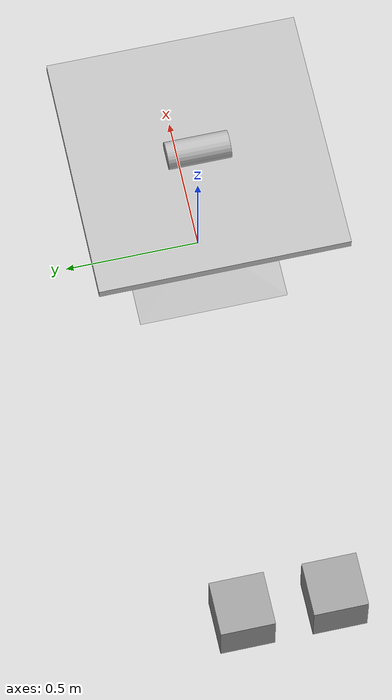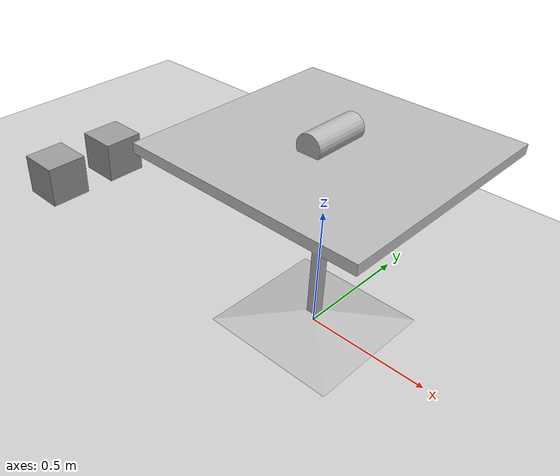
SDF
<sdf version='1.7'>
  <world name='default'>
    <light name='sun' type='directional'>
      <cast_shadows>1</cast_shadows>
      <pose>0 0 10 0 -0 0</pose>
      <diffuse>0.8 0.8 0.8 1</diffuse>
      <specular>0.2 0.2 0.2 1</specular>
      <attenuation>
        <range>1000</range>
        <constant>0.9</constant>
        <linear>0.01</linear>
        <quadratic>0.001</quadratic>
      </attenuation>
      <direction>-0.5 0.1 -0.9</direction>
      <spot>
        <inner_angle>0</inner_angle>
        <outer_angle>0</outer_angle>
        <falloff>0</falloff>
      </spot>
    </light>
    <model name='ground_plane'>
      <static>1</static>
      <link name='link'>
        <collision name='collision'>
          <geometry>
            <plane>
              <normal>0 0 1</normal>
              <size>100 100</size>
            </plane>
          </geometry>
          <surface>
            <contact>
              <collide_bitmask>65535</collide_bitmask>
              <ode/>
            </contact>
            <friction>
              <ode>
                <mu>100</mu>
                <mu2>50</mu2>
              </ode>
              <torsional>
                <ode/>
              </torsional>
            </friction>
            <bounce/>
          </surface>
          <max_contacts>10</max_contacts>
        </collision>
        <visual name='visual'>
          <cast_shadows>0</cast_shadows>
          <geometry>
            <plane>
              <normal>0 0 1</normal>
              <size>100 100</size>
            </plane>
          </geometry>
          <material>
            <script>
              <uri>file://media/materials/scripts/gazebo.material</uri>
              <name>Gazebo/Grey</name>
            </script>
          </material>
        </visual>
        <self_collide>0</self_collide>
        <enable_wind>0</enable_wind>
        <kinematic>0</kinematic>
      </link>
    </model>
    <gravity>0 0 -9.8</gravity>
    <magnetic_field>6e-06 2.3e-05 -4.2e-05</magnetic_field>
    <atmosphere type='adiabatic'/>
    <physics type='ode'>
      <max_step_size>0.001</max_step_size>
      <real_time_factor>1</real_time_factor>
      <real_time_update_rate>1000</real_time_update_rate>
    </physics>
    <scene>
      <ambient>0.4 0.4 0.4 1</ambient>
      <background>0.7 0.7 0.7 1</background>
      <shadows>1</shadows>
    </scene>
    <wind/>
    <spherical_coordinates>
      <surface_model>EARTH_WGS84</surface_model>
      <latitude_deg>0</latitude_deg>
      <longitude_deg>0</longitude_deg>
      <elevation>0</elevation>
      <heading_deg>0</heading_deg>
    </spherical_coordinates>
    <gui fullscreen='0'>
      <camera name='user_camera'>
        <pose>-6.6627 -5.3902 5.57121 0 0.544 0.647997</pose>
        <view_controller>orbit</view_controller>
        <projection_type>perspective</projection_type>
      </camera>
    </gui>
    <model name='beer'>
      <link name='link'>
        <pose>0 0 0 0 0 0</pose>
        <inertial>
          <mass>0.1</mass>
          <inertia>
            <ixx>0.00058</ixx>
            <ixy>0</ixy>
            <ixz>0</ixz>
            <iyy>0.00058</iyy>
            <iyz>0</iyz>
            <izz>0.00019</izz>
          </inertia>
          <pose>0 0 0 0 -0 0</pose>
        </inertial>
        <collision name='collision'>
          <geometry>
            <cylinder>
              <radius>0.05</radius>
              <length>0.23</length>
            </cylinder>
          </geometry>
          <max_contacts>10</max_contacts>
          <surface>
            <contact>
              <ode/>
            </contact>
            <bounce/>
            <friction>
              <torsional>
                <ode/>
              </torsional>
              <ode>
                <mu>100.0</mu>
                <mu2>100.0</mu2>
              </ode>
            </friction>
          </surface>
        </collision>
        <visual name='visual'>
          <geometry>
            <cylinder>
              <radius>0.05</radius>
              <length>0.23</length>
            </cylinder>
          </geometry>
          <surface>
            <friction>
                <ode>
                <mu>100.0</mu>
                <mu2>100.0</mu2>
                </ode>
            </friction>
          </surface>
          <material>
            <script>
              <uri>model://beer/materials/scripts</uri>
              <uri>model://beer/materials/textures</uri>
              <name>Beer/Diffuse</name>
            </script>
          </material>
        </visual>
        <self_collide>0</self_collide>
        <enable_wind>0</enable_wind>
        <kinematic>0</kinematic>
      </link>
      <pose>0 0 0.8 -1.57 0 0</pose>
    </model>
    <model name='cafe_table'>
      <static>1</static>
      <link name='link'>
        <collision name='surface'>
          <pose>0 0 0.755 0 -0 0</pose>
          <geometry>
            <box>
              <size>0.913 0.913 0.04</size>
            </box>
          </geometry>
          <max_contacts>10</max_contacts>
          <surface>
            <contact>
              <ode/>
            </contact>
            <bounce/>
            <friction>
              <torsional>
                <ode/>
              </torsional>
              <ode/>
            </friction>
          </surface>
        </collision>
        <collision name='column'>
          <pose>0 0 0.37 0 -0 0</pose>
          <geometry>
            <box>
              <size>0.042 0.042 0.74</size>
            </box>
          </geometry>
          <max_contacts>10</max_contacts>
          <surface>
            <contact>
              <ode/>
            </contact>
            <bounce/>
            <friction>
              <torsional>
                <ode/>
              </torsional>
              <ode/>
            </friction>
          </surface>
        </collision>
        <collision name='base'>
          <pose>0 0 0.02 0 -0 0</pose>
          <geometry>
            <box>
              <size>0.56 0.56 0.04</size>
            </box>
          </geometry>
          <max_contacts>10</max_contacts>
          <surface>
            <contact>
              <ode/>
            </contact>
            <bounce/>
            <friction>
              <torsional>
                <ode/>
              </torsional>
              <ode/>
            </friction>
          </surface>
        </collision>
        <visual name='visual'>
          <geometry>
            <mesh>
              <uri>model://cafe_table/meshes/cafe_table.dae</uri>
            </mesh>
          </geometry>
        </visual>
        <self_collide>0</self_collide>
        <enable_wind>0</enable_wind>
        <kinematic>0</kinematic>
      </link>
      <pose>0.0 0.0 0 0 0 0</pose>
    </model>
    <model name='unit_box_1'>
      <static>1</static>
      <pose>-1.5 0.17 0.1 0 -0 0</pose>
      <link name='link'>
        <inertial>
          <mass>1</mass>
          <inertia>
            <ixx>0.166667</ixx>
            <ixy>0</ixy>
            <ixz>0</ixz>
            <iyy>0.166667</iyy>
            <iyz>0</iyz>
            <izz>0.166667</izz>
          </inertia>
          <pose>0 0 0 0 -0 0</pose>
        </inertial>
        <collision name='collision'>
          <geometry>
            <box>
              <size>0.2 0.2 0.2</size>
            </box>
          </geometry>
          <max_contacts>10</max_contacts>
          <surface>
            <contact>
              <ode/>
            </contact>
            <bounce/>
            <friction>
              <torsional>
                <ode/>
              </torsional>
              <ode/>
            </friction>
          </surface>
        </collision>
        <visual name='visual'>
          <geometry>
            <box>
              <size>0.2 0.2 0.2</size>
            </box>
          </geometry>
          <material>
            <script>
              <name>Gazebo/Grey</name>
              <uri>file://media/materials/scripts/gazebo.material</uri>
            </script>
          </material>
        </visual>
        <self_collide>0</self_collide>
        <enable_wind>0</enable_wind>
        <kinematic>0</kinematic>
      </link>
    </model>
    <model name='unit_box_2'>
      <static>1</static>
      <pose>-1.5 -0.17 0.1 0 -0 0</pose>
      <link name='link'>
        <inertial>
          <mass>1</mass>
          <inertia>
            <ixx>0.166667</ixx>
            <ixy>0</ixy>
            <ixz>0</ixz>
            <iyy>0.166667</iyy>
            <iyz>0</iyz>
            <izz>0.166667</izz>
          </inertia>
          <pose>0 0 0 0 -0 0</pose>
        </inertial>
        <collision name='collision'>
          <geometry>
            <box>
              <size>0.2 0.2 0.2</size>
            </box>
          </geometry>
          <max_contacts>10</max_contacts>
          <surface>
            <contact>
              <ode/>
            </contact>
            <bounce/>
            <friction>
              <torsional>
                <ode/>
              </torsional>
              <ode/>
            </friction>
          </surface>
        </collision>
        <visual name='visual'>
          <geometry>
            <box>
              <size>0.2 0.2 0.2</size>
            </box>
          </geometry>
          <material>
            <script>
              <name>Gazebo/Grey</name>
              <uri>file://media/materials/scripts/gazebo.material</uri>
            </script>
          </material>
        </visual>
        <self_collide>0</self_collide>
        <enable_wind>0</enable_wind>
        <kinematic>0</kinematic>
      </link>
    </model>
  </world>
</sdf>
